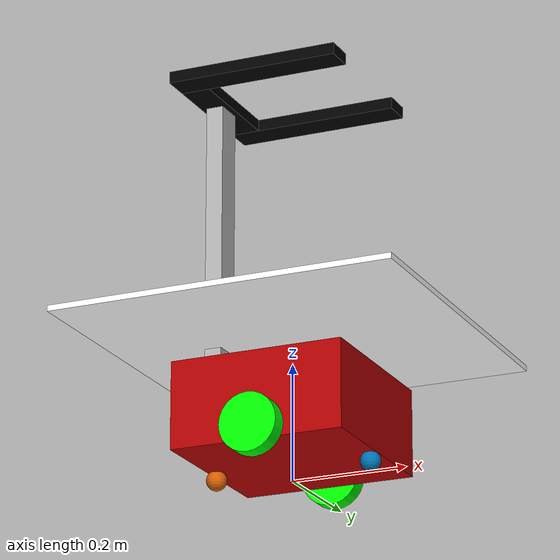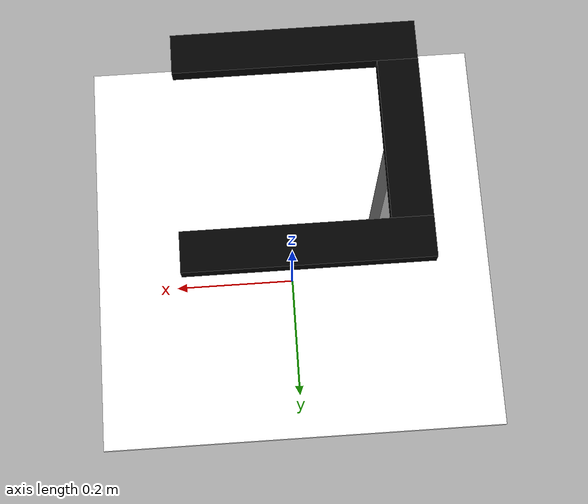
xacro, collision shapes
<?xml version="1.0" ?>
<robot name='krever' xmlns:xacro="http://ros.org/wiki/xacro">

  <xacro:include filename="inertial_macros.xacro"/>

  <!-- Robot's base properties -->
  <xacro:property name="base_length" value="0.3"/>
  <xacro:property name="base_width" value="0.3"/>
  <xacro:property name="base_height" value="0.15"/>

  <!-- Robot's wheel properties -->
  <xacro:property name="wheel_radius" value="0.05"/>
  <xacro:property name="wheel_height" value="0.03"/>
  <xacro:property name="wheel_mass" value="0.15"/>

  <!-- Distance between centre of wheel and robot base -->
  <xacro:property name="wheel_zoff" value="0.33"/>

  <link name="base_footprint"/>

   <joint name="base_joint" type="fixed">
     <parent link="base_footprint"/>
     <child link="base_link"/>
     <origin xyz="0 0 0" rpy="0 0 0"/>
   </joint>

  <!-- Robot base chasis-->
  <link name="base_link">
      <visual>
          <geometry>
              <box size="0.3 0.3 0.15"/>
          </geometry>
          <origin xyz="0 0 0.105" rpy="0 0 0"/>
          <material name="red"/>
      </visual>

      <collision>
          <geometry>
              <box size="0.3 0.3 0.15"/>
          </geometry>
          <origin xyz="0 0 0.105" rpy="0 0 0"/>
          <material name="red"/>
      </collision>

      <!-- Rplidar base -->
      <visual name="rplidar_base_visual">
        <origin xyz="0 0 0.175" rpy="0 0 ${-pi/2}"/>
          <geometry>
            <mesh filename="package://krever_description/meshes/rplidar_base.dae"/>
          </geometry>
        </visual>
      <collision name="rplidar_base_collision">
        <origin xyz="0 0 0.175" rpy="0 0 ${-pi/2}"/>
        <geometry>
          <box size="0.11 0.072 0.035"/>
        </geometry>
      </collision>

    <xacro:box_inertia mass="0.864" length="${base_length}" width="${base_width}" height="${base_height}">
      <origin xyz="0 0 0.175" rpy="0 0 0"/>
    </xacro:box_inertia>
  </link>

  <!-- Left wheel -->
  <link name="left_wheel">
    <visual>
        <geometry>
            <cylinder radius="0.05" length="0.03"/>
        </geometry>
        <origin xyz="0 0 0" rpy="1.57 0 0"/>
        <material name="green"/>
    </visual>
    <collision>
        <geometry>
            <cylinder radius="0.05" length="0.03"/>
        </geometry>
        <origin xyz="0 0 0" rpy="1.57 0 0"/>
        <material name="green"/>
    </collision>

    <xacro:cylinder_inertia mass="${wheel_mass}" length="${wheel_height}" radius="${wheel_radius}">
      <origin xyz="0 0 0" rpy="0 0 0"/>
    </xacro:cylinder_inertia>
  </link>

  <joint name="left_wheel_joint" type="continuous">
    <parent link="base_link"/>
    <child link="left_wheel"/>
    <origin xyz="0 0.165 0.05" rpy="0 0 0"/>
    <axis xyz="0 1 0"/>
  </joint>

  <!-- Right wheel -->
  <link name="right_wheel">
    <visual>
        <geometry>
            <cylinder radius="0.05" length="0.03"/>
        </geometry>
        <origin xyz="0 0 0" rpy="1.57 0 0"/>
        <material name="green"/>
    </visual>
    <collision>
        <geometry>
            <cylinder radius="0.05" length="0.03"/>
        </geometry>
        <origin xyz="0 0 0" rpy="1.57 0 0"/>
        <material name="green"/>
    </collision>

    <xacro:cylinder_inertia mass="${wheel_mass}" length="${wheel_height}" radius="${wheel_radius}">
      <origin xyz="0 0 0" rpy="0 0 0"/>
    </xacro:cylinder_inertia>
  </link>

  <joint name="right_wheel_joint" type="continuous">
    <parent link="base_link"/>
    <child link="right_wheel"/>
    <origin xyz="0 -0.165 0.05" rpy="0 0 0"/>
    <axis xyz="0 1 0"/>
  </joint>

  <!-- Caster wheel -->
  <link name="caster_wheel">
    <visual>
      <geometry>
        <mesh filename="package://krever_description/meshes/caster_wheel.dae"/>
      </geometry>
    </visual>
    <collision>
      <origin xyz="0 0 0" rpy="0 0 ${pi/2}"/>
      <geometry>
        <sphere radius="0.0175"/>
      </geometry>
    </collision>

    <xacro:sphere_inertia mass="0.033" radius="0.025">
      <origin xyz="0 0 0" rpy="0 0 0"/>
    </xacro:sphere_inertia>
  </link>

  <joint name="caster_wheel_joint" type="fixed">
    <parent link="base_link"/>
    <child link="caster_wheel"/>
    <origin xyz="0.1375 0 0.0175" rpy="0 0 ${pi/2}"/>
  </joint>

  <gazebo reference="caster_wheel">
    <mu1 value="0.001"/>
    <mu2 value="0.001"/>
  </gazebo>

  <!-- Caster wheel2 -->
  <link name="caster_wheel2">
    <visual>
      <geometry>
        <mesh filename="package://krever_description/meshes/caster_wheel.dae"/>
      </geometry>
    </visual>
    <collision>
      <origin xyz="0 0 0" rpy="0 0 ${pi/2}"/>
      <geometry>
        <sphere radius="0.0175"/>
      </geometry>
    </collision>

    <xacro:sphere_inertia mass="0.033" radius="0.025">
      <origin xyz="0 0 0" rpy="0 0 0"/>
    </xacro:sphere_inertia>
  </link>

  <joint name="caster_wheel_joint2" type="fixed">
    <parent link="base_link"/>
    <child link="caster_wheel2"/>
    <origin xyz="-0.1375 0 0.0175" rpy="0 0 ${pi/2}"/>
  </joint>

  <gazebo reference="caster_wheel2">
    <mu1 value="0.001"/>
    <mu2 value="0.001"/>
  </gazebo>

  <gazebo reference="left_wheel">
    <mu1 value="1.16"/>
    <mu2 value="1.16"/>
  </gazebo>

  <gazebo reference="right_wheel">
    <mu1 value="1.16"/>
    <mu2 value="1.16"/>
  </gazebo>

  <!--colors-->
    <material name="green">
        <color rgba="0 1 0 1"/>
    </material>

    <material name="blue">
        <color rgba="0 0 0.7 1"/>
    </material>

    <material name="red">
        <color rgba="0.7 0 0 1"/>
    </material>

    !--supporint rod-->
    <link name="support_rod">
        <visual>
            <geometry>
                <box size="0.03 0.05 0.5" />
            </geometry>
            <material name="LightGrey">
                <color rgba="0.7 0.7 0.7 1.0"/>
            </material>
        </visual>
        <collision>
            <geometry>
                <box size="0.03 0.05 0.5" />
            </geometry>
        </collision>

        <inertial>
            <origin xyz="0.0 0.0 0.0" rpy="0.0 0.0 0.0"/>
            <mass value="5"/>
            <inertia ixx="0.105" ixy="0.0" ixz="0.0" iyy="0.104" iyz="0.0" izz="0.0014"/>
        </inertial>

    </link>

    <joint name="base_suppot_joint" type="fixed">
        <origin xyz="-0.135 0. 0.425" rpy="0.0 0.0 0.0"/>
        <parent link="base_link"/>
        <child link="support_rod"/>
        <limit lower="0.0" upper="0.0" effort="0.0" velocity="0.0"/>
    </joint>

    <link name="center_rod">
        <visual>
            <geometry>
                <box size="0.2 0.05 0.02" />
            </geometry>
            <material name="black">
                <color rgba="0 0 0 1"/>
            </material>
        </visual>
        <collision>
            <geometry>
                <box size="0.2 0.05 0.02" />
            </geometry>
        </collision>

        <inertial>
            <origin xyz="0.0 0.0 0.0" rpy="0.0 0.0 0.0"/>
            <mass value="2"/>
            <inertia ixx="0.002" ixy="0.0" ixz="0.0" iyy="0.027" iyz="0.0" izz="0.028"/>
        </inertial>

    </link>

    <joint name="center_rod_joint" type="fixed">
        <origin xyz="0 0 0.26" rpy="0 0 1.57"/>
        <parent link="support_rod"/>
        <child link="center_rod"/>
        <limit lower="0.0" upper="0.0" effort="0.0" velocity="0.0"/>
    </joint>

    <link name="left_rod">
        <visual>
            <geometry>
                <box size="0.3 0.05 0.02" />
            </geometry>
            <material name="black">
                <color rgba="0 0 0 1"/>
            </material>
        </visual>
        <collision>
            <geometry>
                <box size="0.3 0.05 0.02" />
            </geometry>
        </collision>

        <inertial>
            <origin xyz="0.0 0.0 0.0" rpy="0.0 0.0 0.0"/>
            <mass value="2"/>
            <inertia ixx="0.002" ixy="0.0" ixz="0.0" iyy="0.06" iyz="0.0" izz="0.061"/>
        </inertial>

    </link>

    <joint name="left_rod_joint" type="fixed">
        <origin xyz="0.125 0.125 0.26" rpy="0.0 0.0 0"/>
        <parent link="support_rod"/>
        <child link="left_rod"/>
        <limit lower="0.0" upper="0.0" effort="0.0" velocity="0.0"/>
    </joint>

    <link name="right_rod">
        <visual>
            <geometry>
                <box size="0.3 0.05 0.02" />
            </geometry>
            <material name="black">
                <color rgba="0 0 0 1"/>
            </material>
        </visual>
        <collision>
            <geometry>
                <box size="0.3 0.05 0.02" />
            </geometry>
        </collision>

        <inertial>
            <origin xyz="0.0 0.0 0.0" rpy="0.0 0.0 0.0"/>
            <mass value="2"/>
            <inertia ixx="0.002" ixy="0.0" ixz="0.0" iyy="0.06" iyz="0.0" izz="0.061"/>
        </inertial>
    </link>

    <joint name="right_rod_joint" type="fixed">
        <origin xyz="0.125 -0.125 0.26" rpy="0.0 0.0 0"/>
        <parent link="support_rod"/>
        <child link="right_rod"/>
        <limit lower="0.0" upper="0.0" effort="0.0" velocity="0.0"/>
    </joint>

<!--tray-->
    <link name="tray">
        <visual>
            <origin xyz="0.0 0.0 0.0" rpy="0.0 0.0 0.0"/>
            <geometry>
                <box size="0.3 0.3 0.01"/>
            </geometry>
            <material name="white">
                <color rgba="1.0 1.0 1.0 1.0"/>
            </material>
        </visual>
        <collision>
            <origin xyz="0.0 0.0 0.0" rpy="0.0 0.0 0.0"/>
            <geometry>
                <box size="0.6 0.6 0.01"/>
            </geometry>
        </collision>

        <inertial>
            <origin xyz="0.0 0.0 0.0" rpy="0.0 0.0 0.0"/>
            <mass value="5"/>
            <inertia ixx="0.154" ixy="0.0" ixz="0.0" iyy="0.154" iyz="0.0" izz="0.3"/>
        </inertial>

    </link>

    <joint name="tray_joint" type="fixed">
        <origin xyz="0.135 0.0 -0.18" rpy="0.0 0.0 0.0"/>
        <parent link="support_rod"/>
        <child link="tray"/>
        <limit lower="0.0" upper="0.0" effort="0.0" velocity="0.0"/>
    </joint>

</robot>
